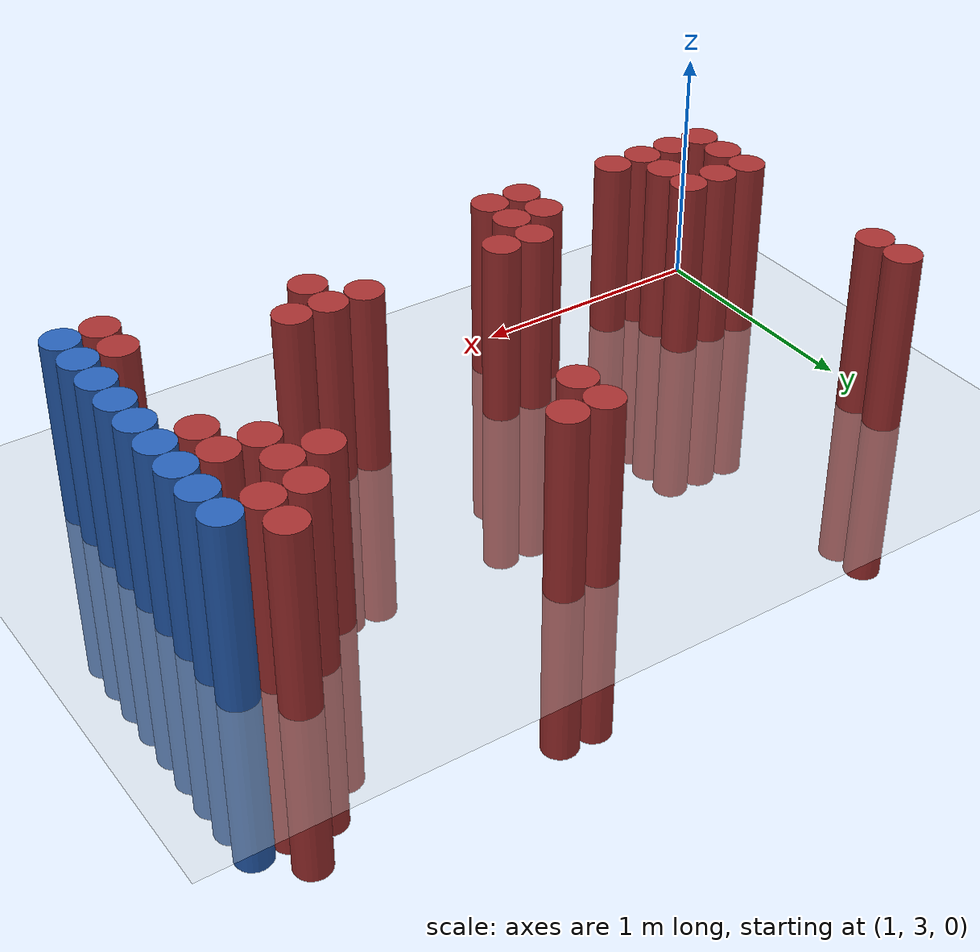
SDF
<sdf version="1.6">
 <world name="default">
  <model name="ground_plane">
   <static>1</static>
   <link name="link">
    <collision name="collision">
     <geometry><plane><normal>0 0 1</normal><size>100 100</size></plane></geometry>
     <surface><friction><ode><mu>100</mu><mu2>50</mu2></ode></friction></surface>
    </collision>
    <visual name="visual">
     <cast_shadows>0</cast_shadows>
     <geometry><plane><normal>0 0 1</normal><size>100 100</size></plane></geometry>
     <material>
      <script><uri>file://media/materials/scripts/gazebo.material</uri><name>Gazebo/Grey</name></script>
     </material>
    </visual>
   </link>
  </model>
  <model name="unit_cylinder_156">
   <static>1</static>
   <pose>3.925000 3.175000 0.000000 0.000000 0.000000 0.000000</pose>
   <link name="link">
    <inertial>
     <mass>1</mass>
     <inertia><ixx>0.145833</ixx><ixy>0</ixy><ixz>0</ixz><iyy>0.145833</iyy><iyz>0</iyz><izz>0.125</izz></inertia>
    </inertial>
    <collision name="collision">
     <geometry><cylinder><radius>0.075000</radius><length>1.5</length></cylinder></geometry>
    </collision>
    <visual name="visual">
     <geometry><cylinder><radius>0.075000</radius><length>1.5</length></cylinder></geometry>
     <material>
      <ambient>0.152000 0.379000 0.720000 1</ambient>
      <diffuse>0.152000 0.379000 0.720000 1</diffuse>
     </material>
     <material>
      <script><name>Gazebo/Grey</name><uri>file://media/materials/scripts/gazebo.material</uri></script>
     </material>
    </visual>
   </link>
  </model>
  <model name="unit_cylinder_158">
   <static>1</static>
   <pose>3.925000 3.325000 0.000000 0.000000 0.000000 0.000000</pose>
   <link name="link">
    <inertial>
     <mass>1</mass>
     <inertia><ixx>0.145833</ixx><ixy>0</ixy><ixz>0</ixz><iyy>0.145833</iyy><iyz>0</iyz><izz>0.125</izz></inertia>
    </inertial>
    <collision name="collision">
     <geometry><cylinder><radius>0.075000</radius><length>1.5</length></cylinder></geometry>
    </collision>
    <visual name="visual">
     <geometry><cylinder><radius>0.075000</radius><length>1.5</length></cylinder></geometry>
     <material>
      <ambient>0.152000 0.379000 0.720000 1</ambient>
      <diffuse>0.152000 0.379000 0.720000 1</diffuse>
     </material>
     <material>
      <script><name>Gazebo/Grey</name><uri>file://media/materials/scripts/gazebo.material</uri></script>
     </material>
    </visual>
   </link>
  </model>
  <model name="unit_cylinder_160">
   <static>1</static>
   <pose>3.925000 3.475000 0.000000 0.000000 0.000000 0.000000</pose>
   <link name="link">
    <inertial>
     <mass>1</mass>
     <inertia><ixx>0.145833</ixx><ixy>0</ixy><ixz>0</ixz><iyy>0.145833</iyy><iyz>0</iyz><izz>0.125</izz></inertia>
    </inertial>
    <collision name="collision">
     <geometry><cylinder><radius>0.075000</radius><length>1.5</length></cylinder></geometry>
    </collision>
    <visual name="visual">
     <geometry><cylinder><radius>0.075000</radius><length>1.5</length></cylinder></geometry>
     <material>
      <ambient>0.152000 0.379000 0.720000 1</ambient>
      <diffuse>0.152000 0.379000 0.720000 1</diffuse>
     </material>
     <material>
      <script><name>Gazebo/Grey</name><uri>file://media/materials/scripts/gazebo.material</uri></script>
     </material>
    </visual>
   </link>
  </model>
  <model name="unit_cylinder_162">
   <static>1</static>
   <pose>3.925000 3.625000 0.000000 0.000000 0.000000 0.000000</pose>
   <link name="link">
    <inertial>
     <mass>1</mass>
     <inertia><ixx>0.145833</ixx><ixy>0</ixy><ixz>0</ixz><iyy>0.145833</iyy><iyz>0</iyz><izz>0.125</izz></inertia>
    </inertial>
    <collision name="collision">
     <geometry><cylinder><radius>0.075000</radius><length>1.5</length></cylinder></geometry>
    </collision>
    <visual name="visual">
     <geometry><cylinder><radius>0.075000</radius><length>1.5</length></cylinder></geometry>
     <material>
      <ambient>0.152000 0.379000 0.720000 1</ambient>
      <diffuse>0.152000 0.379000 0.720000 1</diffuse>
     </material>
     <material>
      <script><name>Gazebo/Grey</name><uri>file://media/materials/scripts/gazebo.material</uri></script>
     </material>
    </visual>
   </link>
  </model>
  <model name="unit_cylinder_164">
   <static>1</static>
   <pose>3.925000 3.775000 0.000000 0.000000 0.000000 0.000000</pose>
   <link name="link">
    <inertial>
     <mass>1</mass>
     <inertia><ixx>0.145833</ixx><ixy>0</ixy><ixz>0</ixz><iyy>0.145833</iyy><iyz>0</iyz><izz>0.125</izz></inertia>
    </inertial>
    <collision name="collision">
     <geometry><cylinder><radius>0.075000</radius><length>1.5</length></cylinder></geometry>
    </collision>
    <visual name="visual">
     <geometry><cylinder><radius>0.075000</radius><length>1.5</length></cylinder></geometry>
     <material>
      <ambient>0.152000 0.379000 0.720000 1</ambient>
      <diffuse>0.152000 0.379000 0.720000 1</diffuse>
     </material>
     <material>
      <script><name>Gazebo/Grey</name><uri>file://media/materials/scripts/gazebo.material</uri></script>
     </material>
    </visual>
   </link>
  </model>
  <model name="unit_cylinder_166">
   <static>1</static>
   <pose>3.925000 3.925000 0.000000 0.000000 0.000000 0.000000</pose>
   <link name="link">
    <inertial>
     <mass>1</mass>
     <inertia><ixx>0.145833</ixx><ixy>0</ixy><ixz>0</ixz><iyy>0.145833</iyy><iyz>0</iyz><izz>0.125</izz></inertia>
    </inertial>
    <collision name="collision">
     <geometry><cylinder><radius>0.075000</radius><length>1.5</length></cylinder></geometry>
    </collision>
    <visual name="visual">
     <geometry><cylinder><radius>0.075000</radius><length>1.5</length></cylinder></geometry>
     <material>
      <ambient>0.152000 0.379000 0.720000 1</ambient>
      <diffuse>0.152000 0.379000 0.720000 1</diffuse>
     </material>
     <material>
      <script><name>Gazebo/Grey</name><uri>file://media/materials/scripts/gazebo.material</uri></script>
     </material>
    </visual>
   </link>
  </model>
  <model name="unit_cylinder_168">
   <static>1</static>
   <pose>3.925000 4.075000 0.000000 0.000000 0.000000 0.000000</pose>
   <link name="link">
    <inertial>
     <mass>1</mass>
     <inertia><ixx>0.145833</ixx><ixy>0</ixy><ixz>0</ixz><iyy>0.145833</iyy><iyz>0</iyz><izz>0.125</izz></inertia>
    </inertial>
    <collision name="collision">
     <geometry><cylinder><radius>0.075000</radius><length>1.5</length></cylinder></geometry>
    </collision>
    <visual name="visual">
     <geometry><cylinder><radius>0.075000</radius><length>1.5</length></cylinder></geometry>
     <material>
      <ambient>0.152000 0.379000 0.720000 1</ambient>
      <diffuse>0.152000 0.379000 0.720000 1</diffuse>
     </material>
     <material>
      <script><name>Gazebo/Grey</name><uri>file://media/materials/scripts/gazebo.material</uri></script>
     </material>
    </visual>
   </link>
  </model>
  <model name="unit_cylinder_170">
   <static>1</static>
   <pose>3.925000 4.225000 0.000000 0.000000 0.000000 0.000000</pose>
   <link name="link">
    <inertial>
     <mass>1</mass>
     <inertia><ixx>0.145833</ixx><ixy>0</ixy><ixz>0</ixz><iyy>0.145833</iyy><iyz>0</iyz><izz>0.125</izz></inertia>
    </inertial>
    <collision name="collision">
     <geometry><cylinder><radius>0.075000</radius><length>1.5</length></cylinder></geometry>
    </collision>
    <visual name="visual">
     <geometry><cylinder><radius>0.075000</radius><length>1.5</length></cylinder></geometry>
     <material>
      <ambient>0.152000 0.379000 0.720000 1</ambient>
      <diffuse>0.152000 0.379000 0.720000 1</diffuse>
     </material>
     <material>
      <script><name>Gazebo/Grey</name><uri>file://media/materials/scripts/gazebo.material</uri></script>
     </material>
    </visual>
   </link>
  </model>
  <model name="unit_cylinder_172">
   <static>1</static>
   <pose>3.925000 4.375000 0.000000 0.000000 0.000000 0.000000</pose>
   <link name="link">
    <inertial>
     <mass>1</mass>
     <inertia><ixx>0.145833</ixx><ixy>0</ixy><ixz>0</ixz><iyy>0.145833</iyy><iyz>0</iyz><izz>0.125</izz></inertia>
    </inertial>
    <collision name="collision">
     <geometry><cylinder><radius>0.075000</radius><length>1.5</length></cylinder></geometry>
    </collision>
    <visual name="visual">
     <geometry><cylinder><radius>0.075000</radius><length>1.5</length></cylinder></geometry>
     <material>
      <ambient>0.152000 0.379000 0.720000 1</ambient>
      <diffuse>0.152000 0.379000 0.720000 1</diffuse>
     </material>
     <material>
      <script><name>Gazebo/Grey</name><uri>file://media/materials/scripts/gazebo.material</uri></script>
     </material>
    </visual>
   </link>
  </model>
  <model name="unit_cylinder_420">
   <static>1</static>
   <pose>1.075000 3.175000 0.000000 0.000000 0.000000 0.000000</pose>
   <link name="link">
    <inertial>
     <mass>1</mass>
     <inertia><ixx>0.145833</ixx><ixy>0</ixy><ixz>0</ixz><iyy>0.145833</iyy><iyz>0</iyz><izz>0.125</izz></inertia>
    </inertial>
    <collision name="collision">
     <geometry><cylinder><radius>0.075000</radius><length>1.5</length></cylinder></geometry>
    </collision>
    <visual name="visual">
     <geometry><cylinder><radius>0.075000</radius><length>1.5</length></cylinder></geometry>
     <material>
      <ambient>0.648000 0.192000 0.192000 1</ambient>
      <diffuse>0.648000 0.192000 0.192000 1</diffuse>
     </material>
     <material>
      <script><name>Gazebo/Grey</name><uri>file://media/materials/scripts/gazebo.material</uri></script>
     </material>
    </visual>
   </link>
  </model>
  <model name="unit_cylinder_421">
   <static>1</static>
   <pose>1.075000 3.325000 0.000000 0.000000 0.000000 0.000000</pose>
   <link name="link">
    <inertial>
     <mass>1</mass>
     <inertia><ixx>0.145833</ixx><ixy>0</ixy><ixz>0</ixz><iyy>0.145833</iyy><iyz>0</iyz><izz>0.125</izz></inertia>
    </inertial>
    <collision name="collision">
     <geometry><cylinder><radius>0.075000</radius><length>1.5</length></cylinder></geometry>
    </collision>
    <visual name="visual">
     <geometry><cylinder><radius>0.075000</radius><length>1.5</length></cylinder></geometry>
     <material>
      <ambient>0.648000 0.192000 0.192000 1</ambient>
      <diffuse>0.648000 0.192000 0.192000 1</diffuse>
     </material>
     <material>
      <script><name>Gazebo/Grey</name><uri>file://media/materials/scripts/gazebo.material</uri></script>
     </material>
    </visual>
   </link>
  </model>
  <model name="unit_cylinder_422">
   <static>1</static>
   <pose>1.075000 3.475000 0.000000 0.000000 0.000000 0.000000</pose>
   <link name="link">
    <inertial>
     <mass>1</mass>
     <inertia><ixx>0.145833</ixx><ixy>0</ixy><ixz>0</ixz><iyy>0.145833</iyy><iyz>0</iyz><izz>0.125</izz></inertia>
    </inertial>
    <collision name="collision">
     <geometry><cylinder><radius>0.075000</radius><length>1.5</length></cylinder></geometry>
    </collision>
    <visual name="visual">
     <geometry><cylinder><radius>0.075000</radius><length>1.5</length></cylinder></geometry>
     <material>
      <ambient>0.648000 0.192000 0.192000 1</ambient>
      <diffuse>0.648000 0.192000 0.192000 1</diffuse>
     </material>
     <material>
      <script><name>Gazebo/Grey</name><uri>file://media/materials/scripts/gazebo.material</uri></script>
     </material>
    </visual>
   </link>
  </model>
  <model name="unit_cylinder_423">
   <static>1</static>
   <pose>1.075000 4.225000 0.000000 0.000000 0.000000 0.000000</pose>
   <link name="link">
    <inertial>
     <mass>1</mass>
     <inertia><ixx>0.145833</ixx><ixy>0</ixy><ixz>0</ixz><iyy>0.145833</iyy><iyz>0</iyz><izz>0.125</izz></inertia>
    </inertial>
    <collision name="collision">
     <geometry><cylinder><radius>0.075000</radius><length>1.5</length></cylinder></geometry>
    </collision>
    <visual name="visual">
     <geometry><cylinder><radius>0.075000</radius><length>1.5</length></cylinder></geometry>
     <material>
      <ambient>0.648000 0.192000 0.192000 1</ambient>
      <diffuse>0.648000 0.192000 0.192000 1</diffuse>
     </material>
     <material>
      <script><name>Gazebo/Grey</name><uri>file://media/materials/scripts/gazebo.material</uri></script>
     </material>
    </visual>
   </link>
  </model>
  <model name="unit_cylinder_424">
   <static>1</static>
   <pose>1.075000 4.375000 0.000000 0.000000 0.000000 0.000000</pose>
   <link name="link">
    <inertial>
     <mass>1</mass>
     <inertia><ixx>0.145833</ixx><ixy>0</ixy><ixz>0</ixz><iyy>0.145833</iyy><iyz>0</iyz><izz>0.125</izz></inertia>
    </inertial>
    <collision name="collision">
     <geometry><cylinder><radius>0.075000</radius><length>1.5</length></cylinder></geometry>
    </collision>
    <visual name="visual">
     <geometry><cylinder><radius>0.075000</radius><length>1.5</length></cylinder></geometry>
     <material>
      <ambient>0.648000 0.192000 0.192000 1</ambient>
      <diffuse>0.648000 0.192000 0.192000 1</diffuse>
     </material>
     <material>
      <script><name>Gazebo/Grey</name><uri>file://media/materials/scripts/gazebo.material</uri></script>
     </material>
    </visual>
   </link>
  </model>
  <model name="unit_cylinder_432">
   <static>1</static>
   <pose>1.225000 3.175000 0.000000 0.000000 0.000000 0.000000</pose>
   <link name="link">
    <inertial>
     <mass>1</mass>
     <inertia><ixx>0.145833</ixx><ixy>0</ixy><ixz>0</ixz><iyy>0.145833</iyy><iyz>0</iyz><izz>0.125</izz></inertia>
    </inertial>
    <collision name="collision">
     <geometry><cylinder><radius>0.075000</radius><length>1.5</length></cylinder></geometry>
    </collision>
    <visual name="visual">
     <geometry><cylinder><radius>0.075000</radius><length>1.5</length></cylinder></geometry>
     <material>
      <ambient>0.648000 0.192000 0.192000 1</ambient>
      <diffuse>0.648000 0.192000 0.192000 1</diffuse>
     </material>
     <material>
      <script><name>Gazebo/Grey</name><uri>file://media/materials/scripts/gazebo.material</uri></script>
     </material>
    </visual>
   </link>
  </model>
  <model name="unit_cylinder_433">
   <static>1</static>
   <pose>1.225000 3.475000 0.000000 0.000000 0.000000 0.000000</pose>
   <link name="link">
    <inertial>
     <mass>1</mass>
     <inertia><ixx>0.145833</ixx><ixy>0</ixy><ixz>0</ixz><iyy>0.145833</iyy><iyz>0</iyz><izz>0.125</izz></inertia>
    </inertial>
    <collision name="collision">
     <geometry><cylinder><radius>0.075000</radius><length>1.5</length></cylinder></geometry>
    </collision>
    <visual name="visual">
     <geometry><cylinder><radius>0.075000</radius><length>1.5</length></cylinder></geometry>
     <material>
      <ambient>0.648000 0.192000 0.192000 1</ambient>
      <diffuse>0.648000 0.192000 0.192000 1</diffuse>
     </material>
     <material>
      <script><name>Gazebo/Grey</name><uri>file://media/materials/scripts/gazebo.material</uri></script>
     </material>
    </visual>
   </link>
  </model>
  <model name="unit_cylinder_441">
   <static>1</static>
   <pose>1.375000 3.175000 0.000000 0.000000 0.000000 0.000000</pose>
   <link name="link">
    <inertial>
     <mass>1</mass>
     <inertia><ixx>0.145833</ixx><ixy>0</ixy><ixz>0</ixz><iyy>0.145833</iyy><iyz>0</iyz><izz>0.125</izz></inertia>
    </inertial>
    <collision name="collision">
     <geometry><cylinder><radius>0.075000</radius><length>1.5</length></cylinder></geometry>
    </collision>
    <visual name="visual">
     <geometry><cylinder><radius>0.075000</radius><length>1.5</length></cylinder></geometry>
     <material>
      <ambient>0.648000 0.192000 0.192000 1</ambient>
      <diffuse>0.648000 0.192000 0.192000 1</diffuse>
     </material>
     <material>
      <script><name>Gazebo/Grey</name><uri>file://media/materials/scripts/gazebo.material</uri></script>
     </material>
    </visual>
   </link>
  </model>
  <model name="unit_cylinder_442">
   <static>1</static>
   <pose>1.375000 3.325000 0.000000 0.000000 0.000000 0.000000</pose>
   <link name="link">
    <inertial>
     <mass>1</mass>
     <inertia><ixx>0.145833</ixx><ixy>0</ixy><ixz>0</ixz><iyy>0.145833</iyy><iyz>0</iyz><izz>0.125</izz></inertia>
    </inertial>
    <collision name="collision">
     <geometry><cylinder><radius>0.075000</radius><length>1.5</length></cylinder></geometry>
    </collision>
    <visual name="visual">
     <geometry><cylinder><radius>0.075000</radius><length>1.5</length></cylinder></geometry>
     <material>
      <ambient>0.648000 0.192000 0.192000 1</ambient>
      <diffuse>0.648000 0.192000 0.192000 1</diffuse>
     </material>
     <material>
      <script><name>Gazebo/Grey</name><uri>file://media/materials/scripts/gazebo.material</uri></script>
     </material>
    </visual>
   </link>
  </model>
  <model name="unit_cylinder_443">
   <static>1</static>
   <pose>1.375000 3.475000 0.000000 0.000000 0.000000 0.000000</pose>
   <link name="link">
    <inertial>
     <mass>1</mass>
     <inertia><ixx>0.145833</ixx><ixy>0</ixy><ixz>0</ixz><iyy>0.145833</iyy><iyz>0</iyz><izz>0.125</izz></inertia>
    </inertial>
    <collision name="collision">
     <geometry><cylinder><radius>0.075000</radius><length>1.5</length></cylinder></geometry>
    </collision>
    <visual name="visual">
     <geometry><cylinder><radius>0.075000</radius><length>1.5</length></cylinder></geometry>
     <material>
      <ambient>0.648000 0.192000 0.192000 1</ambient>
      <diffuse>0.648000 0.192000 0.192000 1</diffuse>
     </material>
     <material>
      <script><name>Gazebo/Grey</name><uri>file://media/materials/scripts/gazebo.material</uri></script>
     </material>
    </visual>
   </link>
  </model>
  <model name="unit_cylinder_454">
   <static>1</static>
   <pose>1.525000 3.175000 0.000000 0.000000 0.000000 0.000000</pose>
   <link name="link">
    <inertial>
     <mass>1</mass>
     <inertia><ixx>0.145833</ixx><ixy>0</ixy><ixz>0</ixz><iyy>0.145833</iyy><iyz>0</iyz><izz>0.125</izz></inertia>
    </inertial>
    <collision name="collision">
     <geometry><cylinder><radius>0.075000</radius><length>1.5</length></cylinder></geometry>
    </collision>
    <visual name="visual">
     <geometry><cylinder><radius>0.075000</radius><length>1.5</length></cylinder></geometry>
     <material>
      <ambient>0.648000 0.192000 0.192000 1</ambient>
      <diffuse>0.648000 0.192000 0.192000 1</diffuse>
     </material>
     <material>
      <script><name>Gazebo/Grey</name><uri>file://media/materials/scripts/gazebo.material</uri></script>
     </material>
    </visual>
   </link>
  </model>
  <model name="unit_cylinder_475">
   <static>1</static>
   <pose>1.975000 3.175000 0.000000 0.000000 0.000000 0.000000</pose>
   <link name="link">
    <inertial>
     <mass>1</mass>
     <inertia><ixx>0.145833</ixx><ixy>0</ixy><ixz>0</ixz><iyy>0.145833</iyy><iyz>0</iyz><izz>0.125</izz></inertia>
    </inertial>
    <collision name="collision">
     <geometry><cylinder><radius>0.075000</radius><length>1.5</length></cylinder></geometry>
    </collision>
    <visual name="visual">
     <geometry><cylinder><radius>0.075000</radius><length>1.5</length></cylinder></geometry>
     <material>
      <ambient>0.648000 0.192000 0.192000 1</ambient>
      <diffuse>0.648000 0.192000 0.192000 1</diffuse>
     </material>
     <material>
      <script><name>Gazebo/Grey</name><uri>file://media/materials/scripts/gazebo.material</uri></script>
     </material>
    </visual>
   </link>
  </model>
  <model name="unit_cylinder_476">
   <static>1</static>
   <pose>1.975000 3.325000 0.000000 0.000000 0.000000 0.000000</pose>
   <link name="link">
    <inertial>
     <mass>1</mass>
     <inertia><ixx>0.145833</ixx><ixy>0</ixy><ixz>0</ixz><iyy>0.145833</iyy><iyz>0</iyz><izz>0.125</izz></inertia>
    </inertial>
    <collision name="collision">
     <geometry><cylinder><radius>0.075000</radius><length>1.5</length></cylinder></geometry>
    </collision>
    <visual name="visual">
     <geometry><cylinder><radius>0.075000</radius><length>1.5</length></cylinder></geometry>
     <material>
      <ambient>0.648000 0.192000 0.192000 1</ambient>
      <diffuse>0.648000 0.192000 0.192000 1</diffuse>
     </material>
     <material>
      <script><name>Gazebo/Grey</name><uri>file://media/materials/scripts/gazebo.material</uri></script>
     </material>
    </visual>
   </link>
  </model>
  <model name="unit_cylinder_484">
   <static>1</static>
   <pose>2.125000 3.175000 0.000000 0.000000 0.000000 0.000000</pose>
   <link name="link">
    <inertial>
     <mass>1</mass>
     <inertia><ixx>0.145833</ixx><ixy>0</ixy><ixz>0</ixz><iyy>0.145833</iyy><iyz>0</iyz><izz>0.125</izz></inertia>
    </inertial>
    <collision name="collision">
     <geometry><cylinder><radius>0.075000</radius><length>1.5</length></cylinder></geometry>
    </collision>
    <visual name="visual">
     <geometry><cylinder><radius>0.075000</radius><length>1.5</length></cylinder></geometry>
     <material>
      <ambient>0.648000 0.192000 0.192000 1</ambient>
      <diffuse>0.648000 0.192000 0.192000 1</diffuse>
     </material>
     <material>
      <script><name>Gazebo/Grey</name><uri>file://media/materials/scripts/gazebo.material</uri></script>
     </material>
    </visual>
   </link>
  </model>
  <model name="unit_cylinder_485">
   <static>1</static>
   <pose>2.125000 3.325000 0.000000 0.000000 0.000000 0.000000</pose>
   <link name="link">
    <inertial>
     <mass>1</mass>
     <inertia><ixx>0.145833</ixx><ixy>0</ixy><ixz>0</ixz><iyy>0.145833</iyy><iyz>0</iyz><izz>0.125</izz></inertia>
    </inertial>
    <collision name="collision">
     <geometry><cylinder><radius>0.075000</radius><length>1.5</length></cylinder></geometry>
    </collision>
    <visual name="visual">
     <geometry><cylinder><radius>0.075000</radius><length>1.5</length></cylinder></geometry>
     <material>
      <ambient>0.648000 0.192000 0.192000 1</ambient>
      <diffuse>0.648000 0.192000 0.192000 1</diffuse>
     </material>
     <material>
      <script><name>Gazebo/Grey</name><uri>file://media/materials/scripts/gazebo.material</uri></script>
     </material>
    </visual>
   </link>
  </model>
  <model name="unit_cylinder_486">
   <static>1</static>
   <pose>2.125000 3.475000 0.000000 0.000000 0.000000 0.000000</pose>
   <link name="link">
    <inertial>
     <mass>1</mass>
     <inertia><ixx>0.145833</ixx><ixy>0</ixy><ixz>0</ixz><iyy>0.145833</iyy><iyz>0</iyz><izz>0.125</izz></inertia>
    </inertial>
    <collision name="collision">
     <geometry><cylinder><radius>0.075000</radius><length>1.5</length></cylinder></geometry>
    </collision>
    <visual name="visual">
     <geometry><cylinder><radius>0.075000</radius><length>1.5</length></cylinder></geometry>
     <material>
      <ambient>0.648000 0.192000 0.192000 1</ambient>
      <diffuse>0.648000 0.192000 0.192000 1</diffuse>
     </material>
     <material>
      <script><name>Gazebo/Grey</name><uri>file://media/materials/scripts/gazebo.material</uri></script>
     </material>
    </visual>
   </link>
  </model>
  <model name="unit_cylinder_492">
   <static>1</static>
   <pose>2.275000 3.475000 0.000000 0.000000 0.000000 0.000000</pose>
   <link name="link">
    <inertial>
     <mass>1</mass>
     <inertia><ixx>0.145833</ixx><ixy>0</ixy><ixz>0</ixz><iyy>0.145833</iyy><iyz>0</iyz><izz>0.125</izz></inertia>
    </inertial>
    <collision name="collision">
     <geometry><cylinder><radius>0.075000</radius><length>1.5</length></cylinder></geometry>
    </collision>
    <visual name="visual">
     <geometry><cylinder><radius>0.075000</radius><length>1.5</length></cylinder></geometry>
     <material>
      <ambient>0.648000 0.192000 0.192000 1</ambient>
      <diffuse>0.648000 0.192000 0.192000 1</diffuse>
     </material>
     <material>
      <script><name>Gazebo/Grey</name><uri>file://media/materials/scripts/gazebo.material</uri></script>
     </material>
    </visual>
   </link>
  </model>
  <model name="unit_cylinder_498">
   <static>1</static>
   <pose>2.575000 4.375000 0.000000 0.000000 0.000000 0.000000</pose>
   <link name="link">
    <inertial>
     <mass>1</mass>
     <inertia><ixx>0.145833</ixx><ixy>0</ixy><ixz>0</ixz><iyy>0.145833</iyy><iyz>0</iyz><izz>0.125</izz></inertia>
    </inertial>
    <collision name="collision">
     <geometry><cylinder><radius>0.075000</radius><length>1.5</length></cylinder></geometry>
    </collision>
    <visual name="visual">
     <geometry><cylinder><radius>0.075000</radius><length>1.5</length></cylinder></geometry>
     <material>
      <ambient>0.648000 0.192000 0.192000 1</ambient>
      <diffuse>0.648000 0.192000 0.192000 1</diffuse>
     </material>
     <material>
      <script><name>Gazebo/Grey</name><uri>file://media/materials/scripts/gazebo.material</uri></script>
     </material>
    </visual>
   </link>
  </model>
  <model name="unit_cylinder_499">
   <static>1</static>
   <pose>2.575000 4.525000 0.000000 0.000000 0.000000 0.000000</pose>
   <link name="link">
    <inertial>
     <mass>1</mass>
     <inertia><ixx>0.145833</ixx><ixy>0</ixy><ixz>0</ixz><iyy>0.145833</iyy><iyz>0</iyz><izz>0.125</izz></inertia>
    </inertial>
    <collision name="collision">
     <geometry><cylinder><radius>0.075000</radius><length>1.5</length></cylinder></geometry>
    </collision>
    <visual name="visual">
     <geometry><cylinder><radius>0.075000</radius><length>1.5</length></cylinder></geometry>
     <material>
      <ambient>0.648000 0.192000 0.192000 1</ambient>
      <diffuse>0.648000 0.192000 0.192000 1</diffuse>
     </material>
     <material>
      <script><name>Gazebo/Grey</name><uri>file://media/materials/scripts/gazebo.material</uri></script>
     </material>
    </visual>
   </link>
  </model>
  <model name="unit_cylinder_505">
   <static>1</static>
   <pose>2.725000 4.525000 0.000000 0.000000 0.000000 0.000000</pose>
   <link name="link">
    <inertial>
     <mass>1</mass>
     <inertia><ixx>0.145833</ixx><ixy>0</ixy><ixz>0</ixz><iyy>0.145833</iyy><iyz>0</iyz><izz>0.125</izz></inertia>
    </inertial>
    <collision name="collision">
     <geometry><cylinder><radius>0.075000</radius><length>1.5</length></cylinder></geometry>
    </collision>
    <visual name="visual">
     <geometry><cylinder><radius>0.075000</radius><length>1.5</length></cylinder></geometry>
     <material>
      <ambient>0.648000 0.192000 0.192000 1</ambient>
      <diffuse>0.648000 0.192000 0.192000 1</diffuse>
     </material>
     <material>
      <script><name>Gazebo/Grey</name><uri>file://media/materials/scripts/gazebo.material</uri></script>
     </material>
    </visual>
   </link>
  </model>
  <model name="unit_cylinder_514">
   <static>1</static>
   <pose>2.875000 3.475000 0.000000 0.000000 0.000000 0.000000</pose>
   <link name="link">
    <inertial>
     <mass>1</mass>
     <inertia><ixx>0.145833</ixx><ixy>0</ixy><ixz>0</ixz><iyy>0.145833</iyy><iyz>0</iyz><izz>0.125</izz></inertia>
    </inertial>
    <collision name="collision">
     <geometry><cylinder><radius>0.075000</radius><length>1.5</length></cylinder></geometry>
    </collision>
    <visual name="visual">
     <geometry><cylinder><radius>0.075000</radius><length>1.5</length></cylinder></geometry>
     <material>
      <ambient>0.648000 0.192000 0.192000 1</ambient>
      <diffuse>0.648000 0.192000 0.192000 1</diffuse>
     </material>
     <material>
      <script><name>Gazebo/Grey</name><uri>file://media/materials/scripts/gazebo.material</uri></script>
     </material>
    </visual>
   </link>
  </model>
  <model name="unit_cylinder_524">
   <static>1</static>
   <pose>3.025000 3.325000 0.000000 0.000000 0.000000 0.000000</pose>
   <link name="link">
    <inertial>
     <mass>1</mass>
     <inertia><ixx>0.145833</ixx><ixy>0</ixy><ixz>0</ixz><iyy>0.145833</iyy><iyz>0</iyz><izz>0.125</izz></inertia>
    </inertial>
    <collision name="collision">
     <geometry><cylinder><radius>0.075000</radius><length>1.5</length></cylinder></geometry>
    </collision>
    <visual name="visual">
     <geometry><cylinder><radius>0.075000</radius><length>1.5</length></cylinder></geometry>
     <material>
      <ambient>0.648000 0.192000 0.192000 1</ambient>
      <diffuse>0.648000 0.192000 0.192000 1</diffuse>
     </material>
     <material>
      <script><name>Gazebo/Grey</name><uri>file://media/materials/scripts/gazebo.material</uri></script>
     </material>
    </visual>
   </link>
  </model>
  <model name="unit_cylinder_525">
   <static>1</static>
   <pose>3.025000 3.475000 0.000000 0.000000 0.000000 0.000000</pose>
   <link name="link">
    <inertial>
     <mass>1</mass>
     <inertia><ixx>0.145833</ixx><ixy>0</ixy><ixz>0</ixz><iyy>0.145833</iyy><iyz>0</iyz><izz>0.125</izz></inertia>
    </inertial>
    <collision name="collision">
     <geometry><cylinder><radius>0.075000</radius><length>1.5</length></cylinder></geometry>
    </collision>
    <visual name="visual">
     <geometry><cylinder><radius>0.075000</radius><length>1.5</length></cylinder></geometry>
     <material>
      <ambient>0.648000 0.192000 0.192000 1</ambient>
      <diffuse>0.648000 0.192000 0.192000 1</diffuse>
     </material>
     <material>
      <script><name>Gazebo/Grey</name><uri>file://media/materials/scripts/gazebo.material</uri></script>
     </material>
    </visual>
   </link>
  </model>
  <model name="unit_cylinder_533">
   <static>1</static>
   <pose>3.175000 3.475000 0.000000 0.000000 0.000000 0.000000</pose>
   <link name="link">
    <inertial>
     <mass>1</mass>
     <inertia><ixx>0.145833</ixx><ixy>0</ixy><ixz>0</ixz><iyy>0.145833</iyy><iyz>0</iyz><izz>0.125</izz></inertia>
    </inertial>
    <collision name="collision">
     <geometry><cylinder><radius>0.075000</radius><length>1.5</length></cylinder></geometry>
    </collision>
    <visual name="visual">
     <geometry><cylinder><radius>0.075000</radius><length>1.5</length></cylinder></geometry>
     <material>
      <ambient>0.648000 0.192000 0.192000 1</ambient>
      <diffuse>0.648000 0.192000 0.192000 1</diffuse>
     </material>
     <material>
      <script><name>Gazebo/Grey</name><uri>file://media/materials/scripts/gazebo.material</uri></script>
     </material>
    </visual>
   </link>
  </model>
  <model name="unit_cylinder_548">
   <static>1</static>
   <pose>3.475000 4.225000 0.000000 0.000000 0.000000 0.000000</pose>
   <link name="link">
    <inertial>
     <mass>1</mass>
     <inertia><ixx>0.145833</ixx><ixy>0</ixy><ixz>0</ixz><iyy>0.145833</iyy><iyz>0</iyz><izz>0.125</izz></inertia>
    </inertial>
    <collision name="collision">
     <geometry><cylinder><radius>0.075000</radius><length>1.5</length></cylinder></geometry>
    </collision>
    <visual name="visual">
     <geometry><cylinder><radius>0.075000</radius><length>1.5</length></cylinder></geometry>
     <material>
      <ambient>0.648000 0.192000 0.192000 1</ambient>
      <diffuse>0.648000 0.192000 0.192000 1</diffuse>
     </material>
     <material>
      <script><name>Gazebo/Grey</name><uri>file://media/materials/scripts/gazebo.material</uri></script>
     </material>
    </visual>
   </link>
  </model>
  <model name="unit_cylinder_551">
   <static>1</static>
   <pose>3.625000 4.075000 0.000000 0.000000 0.000000 0.000000</pose>
   <link name="link">
    <inertial>
     <mass>1</mass>
     <inertia><ixx>0.145833</ixx><ixy>0</ixy><ixz>0</ixz><iyy>0.145833</iyy><iyz>0</iyz><izz>0.125</izz></inertia>
    </inertial>
    <collision name="collision">
     <geometry><cylinder><radius>0.075000</radius><length>1.5</length></cylinder></geometry>
    </collision>
    <visual name="visual">
     <geometry><cylinder><radius>0.075000</radius><length>1.5</length></cylinder></geometry>
     <material>
      <ambient>0.648000 0.192000 0.192000 1</ambient>
      <diffuse>0.648000 0.192000 0.192000 1</diffuse>
     </material>
     <material>
      <script><name>Gazebo/Grey</name><uri>file://media/materials/scripts/gazebo.material</uri></script>
     </material>
    </visual>
   </link>
  </model>
  <model name="unit_cylinder_552">
   <static>1</static>
   <pose>3.625000 4.225000 0.000000 0.000000 0.000000 0.000000</pose>
   <link name="link">
    <inertial>
     <mass>1</mass>
     <inertia><ixx>0.145833</ixx><ixy>0</ixy><ixz>0</ixz><iyy>0.145833</iyy><iyz>0</iyz><izz>0.125</izz></inertia>
    </inertial>
    <collision name="collision">
     <geometry><cylinder><radius>0.075000</radius><length>1.5</length></cylinder></geometry>
    </collision>
    <visual name="visual">
     <geometry><cylinder><radius>0.075000</radius><length>1.5</length></cylinder></geometry>
     <material>
      <ambient>0.648000 0.192000 0.192000 1</ambient>
      <diffuse>0.648000 0.192000 0.192000 1</diffuse>
     </material>
     <material>
      <script><name>Gazebo/Grey</name><uri>file://media/materials/scripts/gazebo.material</uri></script>
     </material>
    </visual>
   </link>
  </model>
  <model name="unit_cylinder_553">
   <static>1</static>
   <pose>3.625000 4.375000 0.000000 0.000000 0.000000 0.000000</pose>
   <link name="link">
    <inertial>
     <mass>1</mass>
     <inertia><ixx>0.145833</ixx><ixy>0</ixy><ixz>0</ixz><iyy>0.145833</iyy><iyz>0</iyz><izz>0.125</izz></inertia>
    </inertial>
    <collision name="collision">
     <geometry><cylinder><radius>0.075000</radius><length>1.5</length></cylinder></geometry>
    </collision>
    <visual name="visual">
     <geometry><cylinder><radius>0.075000</radius><length>1.5</length></cylinder></geometry>
     <material>
      <ambient>0.648000 0.192000 0.192000 1</ambient>
      <diffuse>0.648000 0.192000 0.192000 1</diffuse>
     </material>
     <material>
      <script><name>Gazebo/Grey</name><uri>file://media/materials/scripts/gazebo.material</uri></script>
     </material>
    </visual>
   </link>
  </model>
  <model name="unit_cylinder_564">
   <static>1</static>
   <pose>3.775000 3.175000 0.000000 0.000000 0.000000 0.000000</pose>
   <link name="link">
    <inertial>
     <mass>1</mass>
     <inertia><ixx>0.145833</ixx><ixy>0</ixy><ixz>0</ixz><iyy>0.145833</iyy><iyz>0</iyz><izz>0.125</izz></inertia>
    </inertial>
    <collision name="collision">
     <geometry><cylinder><radius>0.075000</radius><length>1.5</length></cylinder></geometry>
    </collision>
    <visual name="visual">
     <geometry><cylinder><radius>0.075000</radius><length>1.5</length></cylinder></geometry>
     <material>
      <ambient>0.648000 0.192000 0.192000 1</ambient>
      <diffuse>0.648000 0.192000 0.192000 1</diffuse>
     </material>
     <material>
      <script><name>Gazebo/Grey</name><uri>file://media/materials/scripts/gazebo.material</uri></script>
     </material>
    </visual>
   </link>
  </model>
  <model name="unit_cylinder_565">
   <static>1</static>
   <pose>3.775000 3.325000 0.000000 0.000000 0.000000 0.000000</pose>
   <link name="link">
    <inertial>
     <mass>1</mass>
     <inertia><ixx>0.145833</ixx><ixy>0</ixy><ixz>0</ixz><iyy>0.145833</iyy><iyz>0</iyz><izz>0.125</izz></inertia>
    </inertial>
    <collision name="collision">
     <geometry><cylinder><radius>0.075000</radius><length>1.5</length></cylinder></geometry>
    </collision>
    <visual name="visual">
     <geometry><cylinder><radius>0.075000</radius><length>1.5</length></cylinder></geometry>
     <material>
      <ambient>0.648000 0.192000 0.192000 1</ambient>
      <diffuse>0.648000 0.192000 0.192000 1</diffuse>
     </material>
     <material>
      <script><name>Gazebo/Grey</name><uri>file://media/materials/scripts/gazebo.material</uri></script>
     </material>
    </visual>
   </link>
  </model>
  <model name="unit_cylinder_566">
   <static>1</static>
   <pose>3.775000 3.925000 0.000000 0.000000 0.000000 0.000000</pose>
   <link name="link">
    <inertial>
     <mass>1</mass>
     <inertia><ixx>0.145833</ixx><ixy>0</ixy><ixz>0</ixz><iyy>0.145833</iyy><iyz>0</iyz><izz>0.125</izz></inertia>
    </inertial>
    <collision name="collision">
     <geometry><cylinder><radius>0.075000</radius><length>1.5</length></cylinder></geometry>
    </collision>
    <visual name="visual">
     <geometry><cylinder><radius>0.075000</radius><length>1.5</length></cylinder></geometry>
     <material>
      <ambient>0.648000 0.192000 0.192000 1</ambient>
      <diffuse>0.648000 0.192000 0.192000 1</diffuse>
     </material>
     <material>
      <script><name>Gazebo/Grey</name><uri>file://media/materials/scripts/gazebo.material</uri></script>
     </material>
    </visual>
   </link>
  </model>
  <model name="unit_cylinder_567">
   <static>1</static>
   <pose>3.775000 4.075000 0.000000 0.000000 0.000000 0.000000</pose>
   <link name="link">
    <inertial>
     <mass>1</mass>
     <inertia><ixx>0.145833</ixx><ixy>0</ixy><ixz>0</ixz><iyy>0.145833</iyy><iyz>0</iyz><izz>0.125</izz></inertia>
    </inertial>
    <collision name="collision">
     <geometry><cylinder><radius>0.075000</radius><length>1.5</length></cylinder></geometry>
    </collision>
    <visual name="visual">
     <geometry><cylinder><radius>0.075000</radius><length>1.5</length></cylinder></geometry>
     <material>
      <ambient>0.648000 0.192000 0.192000 1</ambient>
      <diffuse>0.648000 0.192000 0.192000 1</diffuse>
     </material>
     <material>
      <script><name>Gazebo/Grey</name><uri>file://media/materials/scripts/gazebo.material</uri></script>
     </material>
    </visual>
   </link>
  </model>
  <model name="unit_cylinder_568">
   <static>1</static>
   <pose>3.775000 4.375000 0.000000 0.000000 0.000000 0.000000</pose>
   <link name="link">
    <inertial>
     <mass>1</mass>
     <inertia><ixx>0.145833</ixx><ixy>0</ixy><ixz>0</ixz><iyy>0.145833</iyy><iyz>0</iyz><izz>0.125</izz></inertia>
    </inertial>
    <collision name="collision">
     <geometry><cylinder><radius>0.075000</radius><length>1.5</length></cylinder></geometry>
    </collision>
    <visual name="visual">
     <geometry><cylinder><radius>0.075000</radius><length>1.5</length></cylinder></geometry>
     <material>
      <ambient>0.648000 0.192000 0.192000 1</ambient>
      <diffuse>0.648000 0.192000 0.192000 1</diffuse>
     </material>
     <material>
      <script><name>Gazebo/Grey</name><uri>file://media/materials/scripts/gazebo.material</uri></script>
     </material>
    </visual>
   </link>
  </model>
  <model name="unit_cylinder_569">
   <static>1</static>
   <pose>3.775000 4.525000 0.000000 0.000000 0.000000 0.000000</pose>
   <link name="link">
    <inertial>
     <mass>1</mass>
     <inertia><ixx>0.145833</ixx><ixy>0</ixy><ixz>0</ixz><iyy>0.145833</iyy><iyz>0</iyz><izz>0.125</izz></inertia>
    </inertial>
    <collision name="collision">
     <geometry><cylinder><radius>0.075000</radius><length>1.5</length></cylinder></geometry>
    </collision>
    <visual name="visual">
     <geometry><cylinder><radius>0.075000</radius><length>1.5</length></cylinder></geometry>
     <material>
      <ambient>0.648000 0.192000 0.192000 1</ambient>
      <diffuse>0.648000 0.192000 0.192000 1</diffuse>
     </material>
     <material>
      <script><name>Gazebo/Grey</name><uri>file://media/materials/scripts/gazebo.material</uri></script>
     </material>
    </visual>
   </link>
  </model>
  <model name="unit_cylinder_606">
   <static>1</static>
   <pose>3.925000 3.175000 0.000000 0.000000 0.000000 0.000000</pose>
   <link name="link">
    <inertial>
     <mass>1</mass>
     <inertia><ixx>0.145833</ixx><ixy>0</ixy><ixz>0</ixz><iyy>0.145833</iyy><iyz>0</iyz><izz>0.125</izz></inertia>
    </inertial>
    <collision name="collision">
     <geometry><cylinder><radius>0.075000</radius><length>1.5</length></cylinder></geometry>
    </collision>
    <visual name="visual">
     <geometry><cylinder><radius>0.075000</radius><length>1.5</length></cylinder></geometry>
     <material>
      <ambient>0.152000 0.379000 0.720000 1</ambient>
      <diffuse>0.152000 0.379000 0.720000 1</diffuse>
     </material>
     <material>
      <script><name>Gazebo/Grey</name><uri>file://media/materials/scripts/gazebo.material</uri></script>
     </material>
    </visual>
   </link>
  </model>
  <model name="unit_cylinder_607">
   <static>1</static>
   <pose>3.925000 3.325000 0.000000 0.000000 0.000000 0.000000</pose>
   <link name="link">
    <inertial>
     <mass>1</mass>
     <inertia><ixx>0.145833</ixx><ixy>0</ixy><ixz>0</ixz><iyy>0.145833</iyy><iyz>0</iyz><izz>0.125</izz></inertia>
    </inertial>
    <collision name="collision">
     <geometry><cylinder><radius>0.075000</radius><length>1.5</length></cylinder></geometry>
    </collision>
    <visual name="visual">
     <geometry><cylinder><radius>0.075000</radius><length>1.5</length></cylinder></geometry>
     <material>
      <ambient>0.152000 0.379000 0.720000 1</ambient>
      <diffuse>0.152000 0.379000 0.720000 1</diffuse>
     </material>
     <material>
      <script><name>Gazebo/Grey</name><uri>file://media/materials/scripts/gazebo.material</uri></script>
     </material>
    </visual>
   </link>
  </model>
  <model name="unit_cylinder_608">
   <static>1</static>
   <pose>3.925000 3.475000 0.000000 0.000000 0.000000 0.000000</pose>
   <link name="link">
    <inertial>
     <mass>1</mass>
     <inertia><ixx>0.145833</ixx><ixy>0</ixy><ixz>0</ixz><iyy>0.145833</iyy><iyz>0</iyz><izz>0.125</izz></inertia>
    </inertial>
    <collision name="collision">
     <geometry><cylinder><radius>0.075000</radius><length>1.5</length></cylinder></geometry>
    </collision>
    <visual name="visual">
     <geometry><cylinder><radius>0.075000</radius><length>1.5</length></cylinder></geometry>
     <material>
      <ambient>0.152000 0.379000 0.720000 1</ambient>
      <diffuse>0.152000 0.379000 0.720000 1</diffuse>
     </material>
     <material>
      <script><name>Gazebo/Grey</name><uri>file://media/materials/scripts/gazebo.material</uri></script>
     </material>
    </visual>
   </link>
  </model>
  <model name="unit_cylinder_609">
   <static>1</static>
   <pose>3.925000 3.625000 0.000000 0.000000 0.000000 0.000000</pose>
   <link name="link">
    <inertial>
     <mass>1</mass>
     <inertia><ixx>0.145833</ixx><ixy>0</ixy><ixz>0</ixz><iyy>0.145833</iyy><iyz>0</iyz><izz>0.125</izz></inertia>
    </inertial>
    <collision name="collision">
     <geometry><cylinder><radius>0.075000</radius><length>1.5</length></cylinder></geometry>
    </collision>
    <visual name="visual">
     <geometry><cylinder><radius>0.075000</radius><length>1.5</length></cylinder></geometry>
     <material>
      <ambient>0.152000 0.379000 0.720000 1</ambient>
      <diffuse>0.152000 0.379000 0.720000 1</diffuse>
     </material>
     <material>
      <script><name>Gazebo/Grey</name><uri>file://media/materials/scripts/gazebo.material</uri></script>
     </material>
    </visual>
   </link>
  </model>
  <model name="unit_cylinder_610">
   <static>1</static>
   <pose>3.925000 3.775000 0.000000 0.000000 0.000000 0.000000</pose>
   <link name="link">
    <inertial>
     <mass>1</mass>
     <inertia><ixx>0.145833</ixx><ixy>0</ixy><ixz>0</ixz><iyy>0.145833</iyy><iyz>0</iyz><izz>0.125</izz></inertia>
    </inertial>
    <collision name="collision">
     <geometry><cylinder><radius>0.075000</radius><length>1.5</length></cylinder></geometry>
    </collision>
    <visual name="visual">
     <geometry><cylinder><radius>0.075000</radius><length>1.5</length></cylinder></geometry>
     <material>
      <ambient>0.152000 0.379000 0.720000 1</ambient>
      <diffuse>0.152000 0.379000 0.720000 1</diffuse>
     </material>
     <material>
      <script><name>Gazebo/Grey</name><uri>file://media/materials/scripts/gazebo.material</uri></script>
     </material>
    </visual>
   </link>
  </model>
  <model name="unit_cylinder_611">
   <static>1</static>
   <pose>3.925000 3.925000 0.000000 0.000000 0.000000 0.000000</pose>
   <link name="link">
    <inertial>
     <mass>1</mass>
     <inertia><ixx>0.145833</ixx><ixy>0</ixy><ixz>0</ixz><iyy>0.145833</iyy><iyz>0</iyz><izz>0.125</izz></inertia>
    </inertial>
    <collision name="collision">
     <geometry><cylinder><radius>0.075000</radius><length>1.5</length></cylinder></geometry>
    </collision>
    <visual name="visual">
     <geometry><cylinder><radius>0.075000</radius><length>1.5</length></cylinder></geometry>
     <material>
      <ambient>0.152000 0.379000 0.720000 1</ambient>
      <diffuse>0.152000 0.379000 0.720000 1</diffuse>
     </material>
     <material>
      <script><name>Gazebo/Grey</name><uri>file://media/materials/scripts/gazebo.material</uri></script>
     </material>
    </visual>
   </link>
  </model>
  <model name="unit_cylinder_612">
   <static>1</static>
   <pose>3.925000 4.075000 0.000000 0.000000 0.000000 0.000000</pose>
   <link name="link">
    <inertial>
     <mass>1</mass>
     <inertia><ixx>0.145833</ixx><ixy>0</ixy><ixz>0</ixz><iyy>0.145833</iyy><iyz>0</iyz><izz>0.125</izz></inertia>
    </inertial>
    <collision name="collision">
     <geometry><cylinder><radius>0.075000</radius><length>1.5</length></cylinder></geometry>
    </collision>
    <visual name="visual">
     <geometry><cylinder><radius>0.075000</radius><length>1.5</length></cylinder></geometry>
     <material>
      <ambient>0.152000 0.379000 0.720000 1</ambient>
      <diffuse>0.152000 0.379000 0.720000 1</diffuse>
     </material>
     <material>
      <script><name>Gazebo/Grey</name><uri>file://media/materials/scripts/gazebo.material</uri></script>
     </material>
    </visual>
   </link>
  </model>
  <model name="unit_cylinder_613">
   <static>1</static>
   <pose>3.925000 4.225000 0.000000 0.000000 0.000000 0.000000</pose>
   <link name="link">
    <inertial>
     <mass>1</mass>
     <inertia><ixx>0.145833</ixx><ixy>0</ixy><ixz>0</ixz><iyy>0.145833</iyy><iyz>0</iyz><izz>0.125</izz></inertia>
    </inertial>
    <collision name="collision">
     <geometry><cylinder><radius>0.075000</radius><length>1.5</length></cylinder></geometry>
    </collision>
    <visual name="visual">
     <geometry><cylinder><radius>0.075000</radius><length>1.5</length></cylinder></geometry>
     <material>
      <ambient>0.152000 0.379000 0.720000 1</ambient>
      <diffuse>0.152000 0.379000 0.720000 1</diffuse>
     </material>
     <material>
      <script><name>Gazebo/Grey</name><uri>file://media/materials/scripts/gazebo.material</uri></script>
     </material>
    </visual>
   </link>
  </model>
  <model name="unit_cylinder_614">
   <static>1</static>
   <pose>3.925000 4.375000 0.000000 0.000000 0.000000 0.000000</pose>
   <link name="link">
    <inertial>
     <mass>1</mass>
     <inertia><ixx>0.145833</ixx><ixy>0</ixy><ixz>0</ixz><iyy>0.145833</iyy><iyz>0</iyz><izz>0.125</izz></inertia>
    </inertial>
    <collision name="collision">
     <geometry><cylinder><radius>0.075000</radius><length>1.5</length></cylinder></geometry>
    </collision>
    <visual name="visual">
     <geometry><cylinder><radius>0.075000</radius><length>1.5</length></cylinder></geometry>
     <material>
      <ambient>0.152000 0.379000 0.720000 1</ambient>
      <diffuse>0.152000 0.379000 0.720000 1</diffuse>
     </material>
     <material>
      <script><name>Gazebo/Grey</name><uri>file://media/materials/scripts/gazebo.material</uri></script>
     </material>
    </visual>
   </link>
  </model>
 </world>
</sdf>
